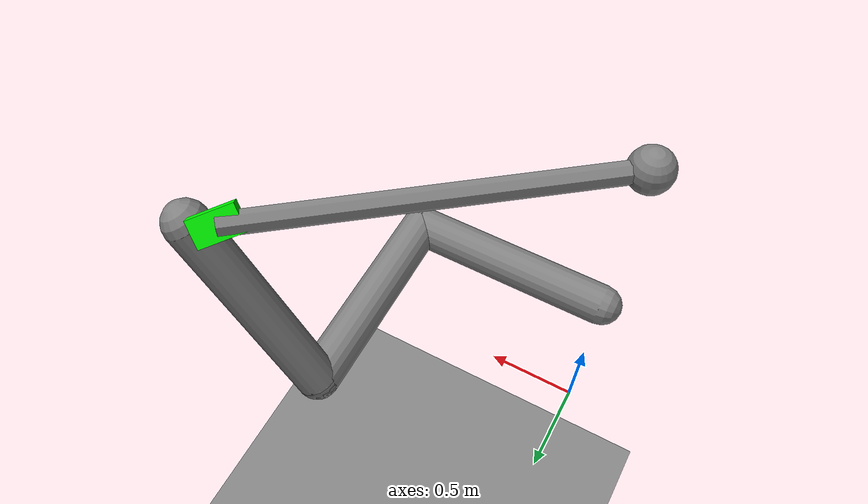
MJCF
<mujoco>
  <compiler alignfree="true"/>
  <worldbody>
    <light pos="0 0 10"/>
    <geom type="plane" pos="0 0 -1.5" size="5 5 .01"/>
    <body name="body" pos="0 0 1">
      <freejoint/>
      <geom type="capsule" size=".1" fromto="0 0 0 1 0 0"/>
      <geom name="geom1" type="capsule" size=".1" fromto="1 0 0 1 1 0"/>
      <frame pos="1 1 0" euler="0 30 0">
        <geom name="geom2" type="capsule" size=".1" fromto="0 0 0 0 0 1"/>
        <site name="site" pos="-.2 0 1" type="box" size=".03 .06 .1" quat="1 2 3 4" rgba="0 1 0 1"/>
        <light name="light" pos="0 0 1.1" dir="0 -1 -1"/>
        <camera name="camera" pos="0 0 1.2" euler="10 20 30"/>
      </frame>
    </body>
    <site name="anchor" pos="0 0 2" size=".1"/>
  </worldbody>

  <tendon>
    <spatial springlength="0 1" stiffness="10000" width=".05">
      <site site="site"/>
      <site site="anchor"/>
    </spatial>
  </tendon>

  <sensor>
    <framepos objtype="body" objname="body"/>
    <framexaxis objtype="body" objname="body"/>
    <frameyaxis objtype="body" objname="body"/>
    <framepos objtype="geom" objname="geom1"/>
    <framexaxis objtype="geom" objname="geom1"/>
    <frameyaxis objtype="geom" objname="geom1"/>
    <framepos objtype="geom" objname="geom2"/>
    <framexaxis objtype="geom" objname="geom2"/>
    <frameyaxis objtype="geom" objname="geom2"/>
    <framepos objtype="site" objname="site"/>
    <framexaxis objtype="site" objname="site"/>
    <frameyaxis objtype="site" objname="site"/>
    <framepos objtype="camera" objname="camera"/>
    <framexaxis objtype="camera" objname="camera"/>
    <frameyaxis objtype="camera" objname="camera"/>
  </sensor>
</mujoco>
